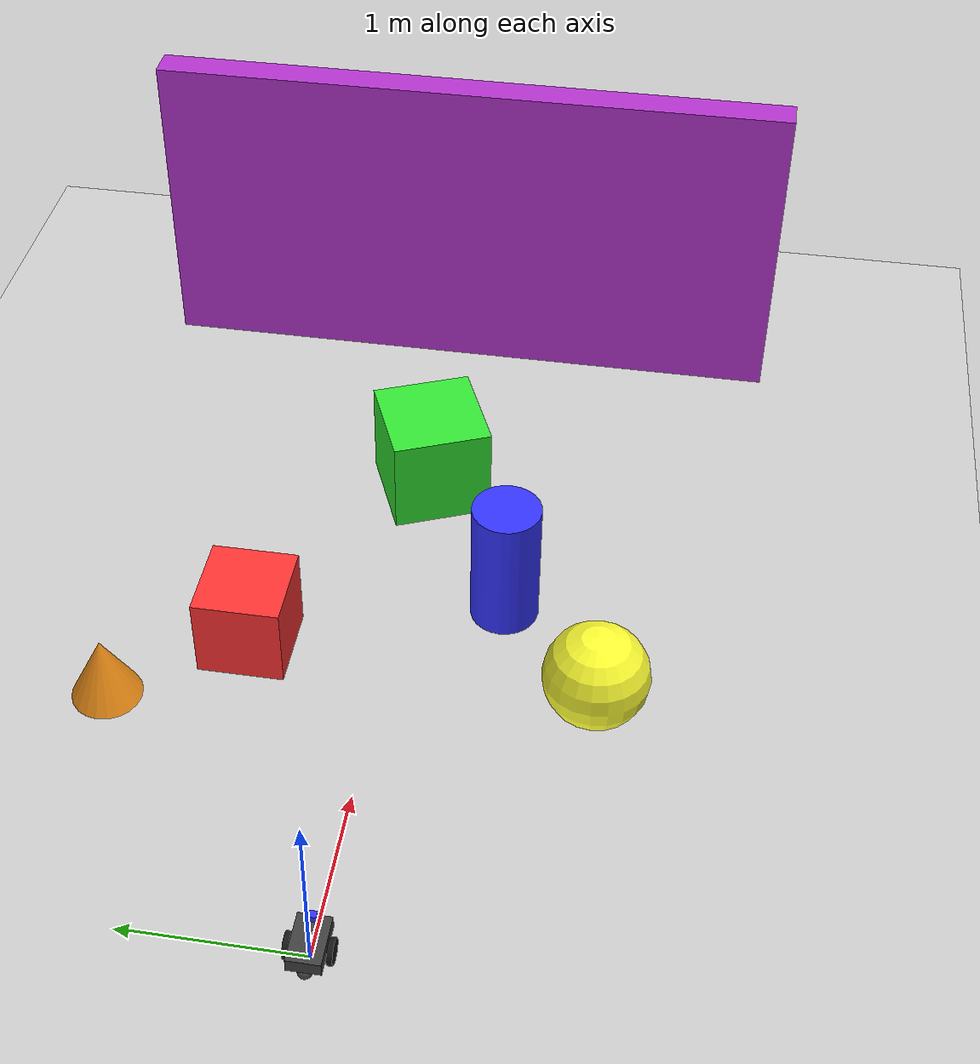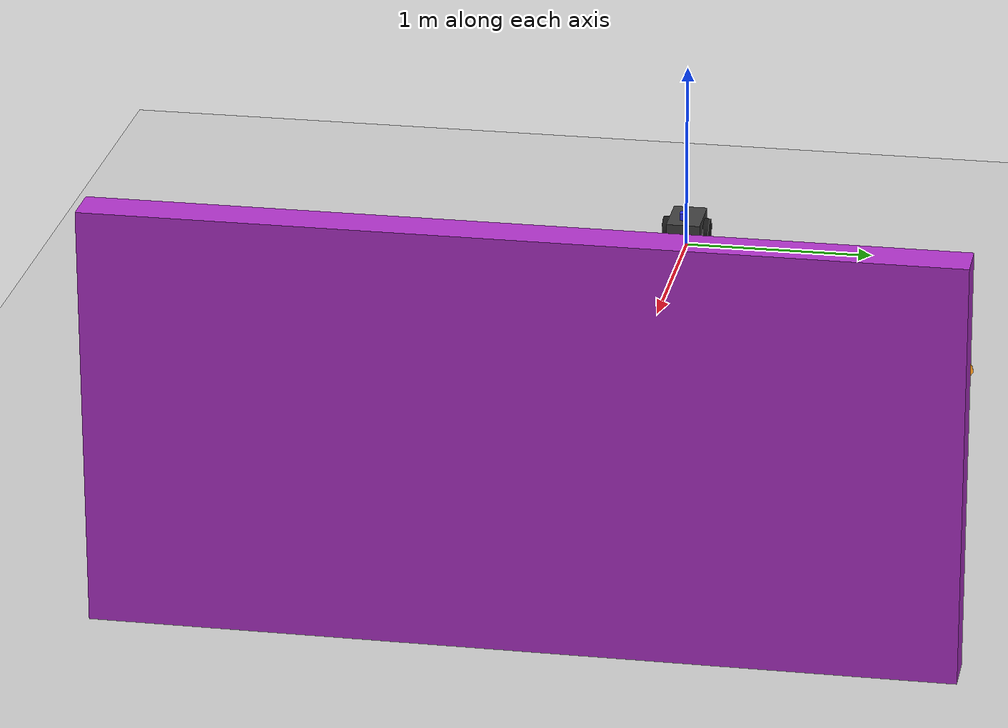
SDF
<?xml version="1.0" ?>
<sdf version="1.9">
  <world name="camera_world">

    <!-- ======================== System Plugins ======================== -->
    <plugin filename="gz-sim-physics-system"
            name="gz::sim::systems::Physics"/>
    <plugin filename="gz-sim-scene-broadcaster-system"
            name="gz::sim::systems::SceneBroadcaster"/>
    <plugin filename="gz-sim-sensors-system"
            name="gz::sim::systems::Sensors">
      <render_engine>ogre2</render_engine>
    </plugin>
    <plugin filename="gz-sim-user-commands-system"
            name="gz::sim::systems::UserCommands"/>

    <!-- ======================== Lighting ======================== -->
    <light type="directional" name="sun">
      <cast_shadows>true</cast_shadows>
      <pose>0 0 10 0 0 0</pose>
      <diffuse>0.9 0.9 0.9 1</diffuse>
      <specular>0.3 0.3 0.3 1</specular>
      <attenuation>
        <range>1000</range>
        <constant>0.9</constant>
        <linear>0.01</linear>
        <quadratic>0.001</quadratic>
      </attenuation>
      <direction>-0.5 0.1 -0.9</direction>
    </light>

    <!-- ======================== Ground Plane ======================== -->
    <model name="ground_plane">
      <static>true</static>
      <link name="link">
        <collision name="collision">
          <geometry>
            <plane>
              <normal>0 0 1</normal>
              <size>100 100</size>
            </plane>
          </geometry>
        </collision>
        <visual name="visual">
          <geometry>
            <plane>
              <normal>0 0 1</normal>
              <size>100 100</size>
            </plane>
          </geometry>
          <material>
            <ambient>0.5 0.5 0.5 1</ambient>
            <diffuse>0.8 0.8 0.8 1</diffuse>
          </material>
        </visual>
      </link>
    </model>

    <!-- ======================== Scene Objects ======================== -->

    <!-- Red Box -->
    <model name="red_box">
      <static>true</static>
      <pose>2.0 0.8 0.25 0 0 0</pose>
      <link name="link">
        <visual name="visual">
          <geometry><box><size>0.5 0.5 0.5</size></box></geometry>
          <material>
            <ambient>0.8 0.1 0.1 1</ambient>
            <diffuse>1.0 0.2 0.2 1</diffuse>
          </material>
        </visual>
        <collision name="collision">
          <geometry><box><size>0.5 0.5 0.5</size></box></geometry>
        </collision>
      </link>
    </model>

    <!-- Blue Cylinder -->
    <model name="blue_cylinder">
      <static>true</static>
      <pose>2.5 -0.6 0.4 0 0 0</pose>
      <link name="link">
        <visual name="visual">
          <geometry><cylinder><radius>0.2</radius><length>0.8</length></cylinder></geometry>
          <material>
            <ambient>0.1 0.1 0.8 1</ambient>
            <diffuse>0.2 0.2 1.0 1</diffuse>
          </material>
        </visual>
        <collision name="collision">
          <geometry><cylinder><radius>0.2</radius><length>0.8</length></cylinder></geometry>
        </collision>
      </link>
    </model>

    <!-- Green Box -->
    <model name="green_box">
      <static>true</static>
      <pose>3.5 0.0 0.3 0 0 0.4</pose>
      <link name="link">
        <visual name="visual">
          <geometry><box><size>0.6 0.6 0.6</size></box></geometry>
          <material>
            <ambient>0.1 0.7 0.1 1</ambient>
            <diffuse>0.2 0.9 0.2 1</diffuse>
          </material>
        </visual>
        <collision name="collision">
          <geometry><box><size>0.6 0.6 0.6</size></box></geometry>
        </collision>
      </link>
    </model>

    <!-- Yellow Sphere -->
    <model name="yellow_sphere">
      <static>true</static>
      <pose>1.8 -1.2 0.3 0 0 0</pose>
      <link name="link">
        <visual name="visual">
          <geometry><sphere><radius>0.3</radius></sphere></geometry>
          <material>
            <ambient>0.8 0.8 0.1 1</ambient>
            <diffuse>1.0 1.0 0.2 1</diffuse>
          </material>
        </visual>
        <collision name="collision">
          <geometry><sphere><radius>0.3</radius></sphere></geometry>
        </collision>
      </link>
    </model>

    <!-- Purple Wall -->
    <model name="purple_wall">
      <static>true</static>
      <pose>5.0 0.0 1.0 0 0 0</pose>
      <link name="link">
        <visual name="visual">
          <geometry><box><size>0.2 4.0 2.0</size></box></geometry>
          <material>
            <ambient>0.5 0.1 0.6 1</ambient>
            <diffuse>0.7 0.2 0.8 1</diffuse>
          </material>
        </visual>
        <collision name="collision">
          <geometry><box><size>0.2 4.0 2.0</size></box></geometry>
        </collision>
      </link>
    </model>

    <!-- Orange Cone (approximated with cylinder) -->
    <model name="orange_cone">
      <static>true</static>
      <pose>1.5 1.5 0.2 0 0 0</pose>
      <link name="link">
        <visual name="visual">
          <geometry><cone><radius>0.2</radius><length>0.4</length></cone></geometry>
          <material>
            <ambient>0.9 0.5 0.1 1</ambient>
            <diffuse>1.0 0.6 0.1 1</diffuse>
          </material>
        </visual>
        <collision name="collision">
          <geometry><cone><radius>0.2</radius><length>0.4</length></cone></geometry>
        </collision>
      </link>
    </model>

    <!-- ======================== Camera Robot ======================== -->
    <model name="camera_robot">
      <pose>0 0 0.08 0 0 0</pose>

      <!-- Chassis -->
      <link name="chassis">
        <pose>0 0 0.04 0 0 0</pose>
        <inertial>
          <mass>5.0</mass>
          <inertia>
            <ixx>0.042</ixx>
            <iyy>0.067</iyy>
            <izz>0.042</izz>
          </inertia>
        </inertial>
        <collision name="collision">
          <geometry><box><size>0.28 0.18 0.08</size></box></geometry>
        </collision>
        <visual name="visual">
          <geometry><box><size>0.28 0.18 0.08</size></box></geometry>
          <material>
            <ambient>0.15 0.15 0.15 1</ambient>
            <diffuse>0.25 0.25 0.25 1</diffuse>
          </material>
        </visual>
      </link>

      <!-- Camera Mount (top of chassis) -->
      <link name="camera_mount">
        <pose>0.1 0 0.12 0 0 0</pose>
        <inertial>
          <mass>0.1</mass>
          <inertia>
            <ixx>0.00005</ixx>
            <iyy>0.00005</iyy>
            <izz>0.00005</izz>
          </inertia>
        </inertial>
        <visual name="visual">
          <geometry><box><size>0.04 0.04 0.04</size></box></geometry>
          <material>
            <ambient>0.1 0.1 0.8 1</ambient>
            <diffuse>0.2 0.2 1.0 1</diffuse>
          </material>
        </visual>

        <!-- Camera Sensor -->
        <sensor name="camera_sensor" type="camera">
          <pose>0.02 0 0 0 0 0</pose>
          <always_on>1</always_on>
          <update_rate>10</update_rate>
          <visualize>true</visualize>
          <topic>camera</topic>
          <camera>
            <horizontal_fov>1.3962634</horizontal_fov>
            <image>
              <width>640</width>
              <height>480</height>
              <format>R8G8B8</format>
            </image>
            <clip>
              <near>0.1</near>
              <far>100</far>
            </clip>
          </camera>
        </sensor>
      </link>

      <!-- Camera Mount Joint -->
      <joint name="camera_mount_joint" type="fixed">
        <parent>chassis</parent>
        <child>camera_mount</child>
      </joint>

      <!-- Left Wheel -->
      <link name="left_wheel">
        <pose>0.0 0.11 0.0 -1.5707963 0 0</pose>
        <inertial>
          <mass>0.5</mass>
          <inertia>
            <ixx>0.0005</ixx>
            <iyy>0.0005</iyy>
            <izz>0.001</izz>
          </inertia>
        </inertial>
        <collision name="collision">
          <geometry><cylinder><radius>0.07</radius><length>0.03</length></cylinder></geometry>
          <surface>
            <friction>
              <ode><mu>1.0</mu><mu2>1.0</mu2></ode>
            </friction>
          </surface>
        </collision>
        <visual name="visual">
          <geometry><cylinder><radius>0.07</radius><length>0.03</length></cylinder></geometry>
          <material>
            <ambient>0.05 0.05 0.05 1</ambient>
            <diffuse>0.1 0.1 0.1 1</diffuse>
          </material>
        </visual>
      </link>

      <!-- Right Wheel -->
      <link name="right_wheel">
        <pose>0.0 -0.11 0.0 -1.5707963 0 0</pose>
        <inertial>
          <mass>0.5</mass>
          <inertia>
            <ixx>0.0005</ixx>
            <iyy>0.0005</iyy>
            <izz>0.001</izz>
          </inertia>
        </inertial>
        <collision name="collision">
          <geometry><cylinder><radius>0.07</radius><length>0.03</length></cylinder></geometry>
          <surface>
            <friction>
              <ode><mu>1.0</mu><mu2>1.0</mu2></ode>
            </friction>
          </surface>
        </collision>
        <visual name="visual">
          <geometry><cylinder><radius>0.07</radius><length>0.03</length></cylinder></geometry>
          <material>
            <ambient>0.05 0.05 0.05 1</ambient>
            <diffuse>0.1 0.1 0.1 1</diffuse>
          </material>
        </visual>
      </link>

      <!-- Caster Wheel -->
      <link name="caster">
        <pose>-0.11 0 -0.03 0 0 0</pose>
        <inertial>
          <mass>0.2</mass>
          <inertia>
            <ixx>0.00008</ixx>
            <iyy>0.00008</iyy>
            <izz>0.00008</izz>
          </inertia>
        </inertial>
        <collision name="collision">
          <geometry><sphere><radius>0.04</radius></sphere></geometry>
          <surface>
            <friction>
              <ode><mu>0.0</mu><mu2>0.0</mu2></ode>
            </friction>
          </surface>
        </collision>
        <visual name="visual">
          <geometry><sphere><radius>0.04</radius></sphere></geometry>
          <material>
            <ambient>0.2 0.2 0.2 1</ambient>
            <diffuse>0.3 0.3 0.3 1</diffuse>
          </material>
        </visual>
      </link>

      <!-- Joints -->
      <joint name="left_wheel_joint" type="revolute">
        <parent>chassis</parent>
        <child>left_wheel</child>
        <axis>
          <xyz>0 0 1</xyz>
          <limit>
            <lower>-1.79769e+308</lower>
            <upper>1.79769e+308</upper>
          </limit>
        </axis>
      </joint>

      <joint name="right_wheel_joint" type="revolute">
        <parent>chassis</parent>
        <child>right_wheel</child>
        <axis>
          <xyz>0 0 1</xyz>
          <limit>
            <lower>-1.79769e+308</lower>
            <upper>1.79769e+308</upper>
          </limit>
        </axis>
      </joint>

      <joint name="caster_joint" type="ball">
        <parent>chassis</parent>
        <child>caster</child>
      </joint>

      <!-- Differential Drive Plugin -->
      <plugin filename="gz-sim-diff-drive-system"
              name="gz::sim::systems::DiffDrive">
        <left_joint>left_wheel_joint</left_joint>
        <right_joint>right_wheel_joint</right_joint>
        <wheel_separation>0.22</wheel_separation>
        <wheel_radius>0.07</wheel_radius>
        <max_linear_acceleration>1.0</max_linear_acceleration>
        <min_linear_acceleration>-1.0</min_linear_acceleration>
        <max_angular_acceleration>2.0</max_angular_acceleration>
        <min_angular_acceleration>-2.0</min_angular_acceleration>
        <topic>cmd_vel</topic>
        <odom_topic>odom</odom_topic>
      </plugin>

    </model>

  </world>
</sdf>
